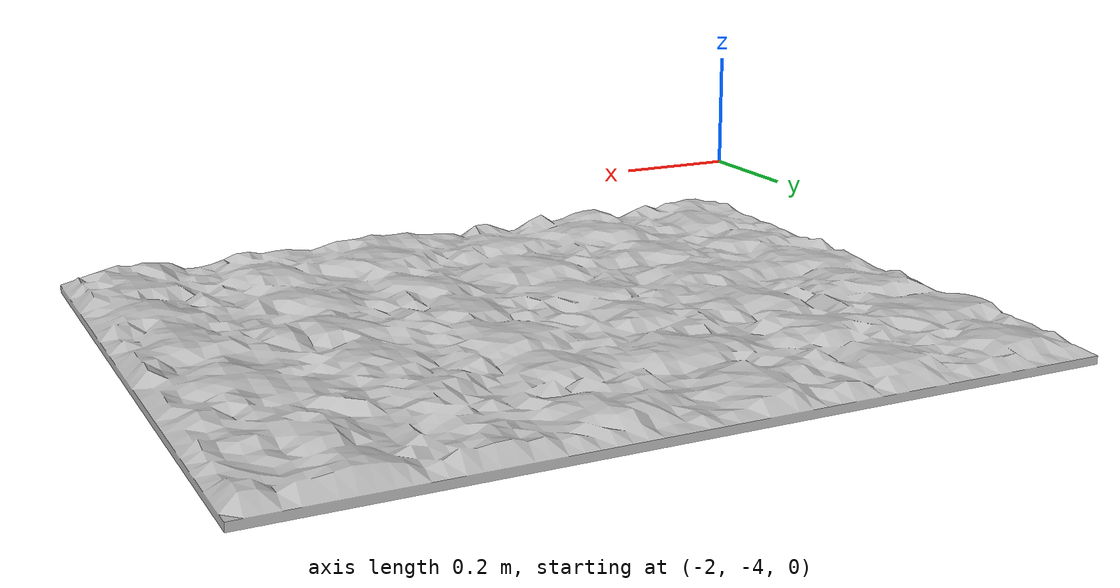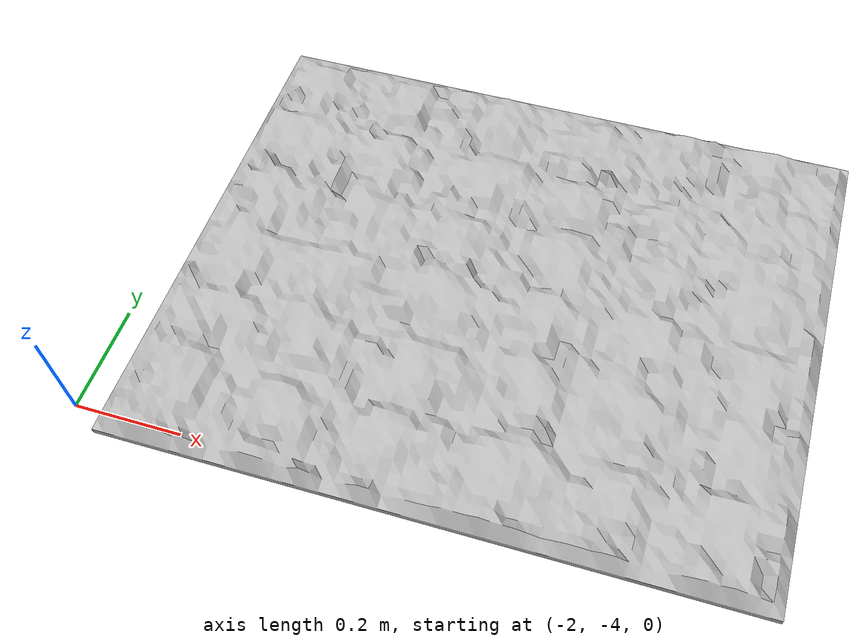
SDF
<sdf version='1.6'>
  <world name='default'>
    <physics type="ode">
    <max_step_size>0.001</max_step_size>
    <real_time_factor>1</real_time_factor>
    <real_time_update_rate>1000</real_time_update_rate>
        <ode>
            <solver>
              <iters>300</iters>
            </solver>
        </ode>
    </physics>
    <scene>
      <shadows>false</shadows>
    </scene>
    <gravity>0 0 -9.81</gravity>
    <model name="mesh_terrain">
      <pose>-2 -4 -0.1  0 0 0</pose>
      <static>true</static>
      <link name="body">
        <visual name="visual">
          <geometry>
            <mesh><uri>model:///rough_25cm/rough_25cm.stl</uri></mesh>
          </geometry>
        </visual>
        <collision name="collision">
          <geometry>
            <mesh><uri>model:///rough_25cm/rough_25cm.stl</uri></mesh>
          </geometry>
          <surface>
            <friction>
              <ode>
                <mu>100</mu>
                <mu2>100</mu2>
              </ode>
            </friction>
          </surface>
        </collision>
      </link>
    </model>
  </world>
</sdf>
